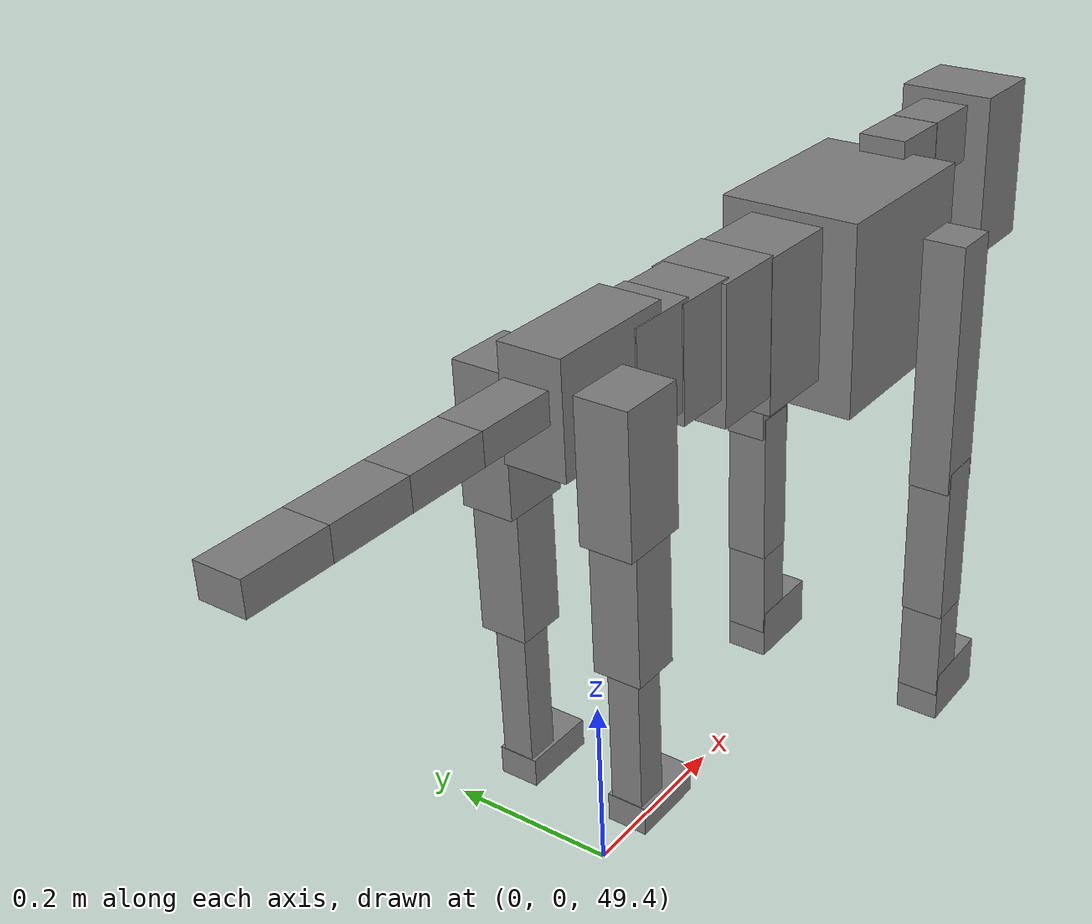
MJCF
<mujoco model="dog">

    <default>
        <joint armature="0.02" stiffness="1" damping="0.2" limited="true"/>
        <geom condim="3" friction="1 0.05 0.05" margin="0.01"/>
        <motor ctrllimited="true" ctrlrange="-1.0 1.0" forcelimited="true" gear="50"/>
    </default>

    <compiler inertiafromgeom="true" angle="radian"/>

    <option timestep="0.016" iterations="50" tolerance="1e-10" solver="Newton" jacobian="dense" cone="pyramidal"/>

    <size nconmax="20000" njmax="60000" nstack="5000000"/>
    <visual>
        <map force="0.1" zfar="30"/>
        <rgba haze="0.15 0.25 0.35 1"/>
        <quality shadowsize="2048"/>
        <global offwidth="800" offheight="800"/>
    </visual>

    <asset>
        <texture type="skybox" builtin="gradient" rgb1="0.3 0.5 0.7" rgb2="0 0 0" width="512" height="512"/>
        <texture name="texplane" type="2d" builtin="checker" rgb1=".2 .3 .4" rgb2=".1 0.15 0.2" width="512" height="512"
                 mark="cross" markrgb=".8 .8 .8"/>
        <texture name="texgeom" type="cube" builtin="flat" mark="cross" width="127" height="1278" rgb1="0.8 0.6 0.4"
                 rgb2="0.8 0.6 0.4" markrgb="1 1 1" random="0.01"/>

        <material name="matplane" reflectance="0.3" texture="texplane" texrepeat="1 1" texuniform="true"/>
        <material name="matgeom" texture="texgeom" texuniform="true" rgba="0.8 0.6 .4 1"/>
    </asset>

    <worldbody>
        <geom name="floor" pos="0 0 0" size="0 0 .25" type="plane" material="matplane" condim="3"/>

        <light directional="false" diffuse=".2 .2 .2" specular="0 0 0" pos="0 0 5" dir="0 0 -1" castshadow="false"/>
        <light mode="targetbodycom" target="torso" directional="false" diffuse=".8 .8 .8" specular="0.3 0.3 0.3"
               pos="0 0 4.0" dir="0 0 -1"/>

        <body name="root" pos="0 0 50">
            <freejoint name="root_1"/>
            <geom type="box" pos="0 0 -0.02" size="0.0774  0.0358  0.063" density="2030"/>

            <body name="spine1" pos="0.054 0 0">
                <joint name="spine1_y" axis="0 1 0" range="0 0.7" limited="true"/>
                <geom type="box" pos="0.02375 0 -0.03" size="0.04375  0.0375  0.05985" density="2030"/>

                <body name="spine2" pos="0.0612 0 0">
                    <joint name="spine2_y" axis="0 1 0" range="-0.15 0.15" limited="true"/>
                    <geom type="box" pos="0.03555  0  -0.04" size="0.04055  0.039  0.06615" density="2030"/>

                    <body name="spine3" pos="0.0730 0 0">
                        <joint name="spine3_y" axis="0 1 0" range="-0.15 0.15" limited="true"/>
                        <geom type="box" pos="0.03555  0  -0.057" size="0.04555  0.0445  0.081" density="2030"/>

                        <body name="spine4" pos="0.0780 0 0">
                            <joint name="spine4_y" axis="0 1 0" range="-0.15 0.15" limited="true"/>
                            <geom type="box" pos="0.05265  0  -0.07" size="0.05265  0.045  0.09135" density="2030"/>

                            <body name="torso" pos="0.1082 0 0">
                                <joint name="torso_y" axis="0 1 0" range="-0.15 0.15" limited="true"/>
                                <geom type="box" pos="0.11925  0  -0.085" size="0.11925  0.085  0.11745"
                                      density="2030"/>

                                <body name="neck1" pos="0.2160  0   0.0180">
                                    <joint name="neck1_y" axis="0 1 0" range="-1.2  -1" limited="true"/>
                                    <geom type="box" pos="0.0423  0  0" size="0.0423  0.03  0.036" density="2325"/>

                                    <body name="neck2" pos="0.0853  0  0">
                                        <joint name="neck2_y" axis="0 1 0" range="0.1  0" limited="true"/>
                                        <geom type="box" pos="0.0423  0  0" size="0.0423  0.03  0.036" density="2325"/>

                                        <body name="head" pos="0.0853  0  0">
                                            <joint name="head_y" axis="0 1 0" range="-0.3  -0.2" limited="true"/>
                                            <geom type="box" pos="0.0531  0  -0.055" size="0.0531  0.06  0.1044"
                                                  density="4030"/>

                                        </body>
                                    </body>
                                </body>

                                <body name="front_shoulder" pos="0.156  0   -0.0480">
                                    <joint name="front_shoulder_y" axis="0 1 0" range="-1 1.5" limited="true"/>
                                    <geom type="box" pos="0 0.13 -0.1330" size="0.0306  0.0262  0.1596" density="1158"/>
                                    <geom type="box" pos="0 -0.13 -0.1330" size="0.0306  0.0262  0.1596"
                                          density="1158"/>

                                    <body name="front_elbow" pos="0  0  -0.2660">
                                        <joint name="front_elbow_y" axis="0 1 0" range="-2 0" limited="true"/>
                                        <geom type="box" pos="0 0.13 -0.1033" size="0.0266  0.0272  0.1033"
                                              density="1081"/>
                                        <geom type="box" pos="0 -0.13 -0.1033" size="0.0266  0.0272  0.1033"
                                              density="1081"/>

                                        <body name="front_wrist" pos="0  0  -0.2067">
                                            <joint name="front_wrist_y" axis="0 1 0" range="-0.2 0" limited="true"/>
                                            <geom type="box" pos="0 0.13 -0.0532" size="0.0244  0.0271  0.0663"
                                                  density="1664"/>
                                            <geom type="box" pos="0 -0.13 -0.0532" size="0.0244  0.0271  0.0663"
                                                  density="1664"/>

                                            <body name="front_finger_end" pos="0  0  -0.1063">
                                                <joint name="front_finger_y" axis="0 1 0" range="-0.4 1"
                                                       limited="true"/>
                                                <geom type="box" pos="0.0278  0.13  -0.0179"
                                                      size="0.0509  0.0278  0.0329" density="1515"/>
                                                <geom type="box" pos="0.0278  -0.13  -0.0179"
                                                      size="0.0509  0.0278  0.0329" density="1515"/>

                                            </body>

                                        </body>
                                    </body>
                                </body>

                            </body>
                        </body>
                    </body>
                </body>
            </body>

            <body name="back_hip" pos="-0.03 0 -0.018">
                <joint name="back_hip_y" axis="0 1 0" range="-1.5 0.3" limited="true"/>
                <geom type="box" pos="0 0.07 -0.0555" size="0.0380  0.0298  0.0783" density="1154"/>
                <geom type="box" pos="0 -0.07 -0.0555" size="0.0380  0.0298  0.0783" density="1154"/>

                <body name="back_knee" pos="0  0  -0.1109">
                    <joint name="back_knee_y" axis="0 1 0" range="0 2.8" limited="true"/>
                    <geom type="box" pos="0 0.07 -0.0775" size="0.0277  0.0273  0.0931" density="1227"/>
                    <geom type="box" pos="0 -0.07 -0.0775" size="0.0277  0.0273  0.0931" density="1227"/>

                    <body name="back_ankle" pos="0  0  -0.1550">
                        <joint name="back_ankle_y" axis="0 1 0" range="-2.2 0" limited="true"/>
                        <geom type="box" pos="0 0.07 -0.0936" size="0.0182  0.0182  0.1049" density="1284"/>
                        <geom type="box" pos="0 -0.07 -0.0936" size="0.0182  0.0182  0.1049" density="1284"/>

                        <body name="back_toe_end" pos="0  0  -0.1873">
                            <joint name="back_toe_y" axis="0 1 0" range="-0.4 1" limited="true"/>
                            <geom type="box" pos="0.0226  0.07  -0.0012" size="0.0415  0.0226  0.0162" density="1515"/>
                            <geom type="box" pos="0.0226  -0.07  -0.0012" size="0.0415  0.0226  0.0162" density="1515"/>

                        </body>
                    </body>
                </body>
            </body>

            <body name="tail1" pos="-0.074 0 -0.006">
                <joint name="tail1_y" axis="0 1 0" range="-0.2 0.2" limited="true"/>
                <geom type="box" pos="-0.0536  0  0" size="0.045  0.025  0.0175" density="1587"/>

                <body name="tail2" pos="-0.09 0 0">
                    <joint name="tail2_y" axis="0 1 0" range="-0.2 0.2" limited="true"/>
                    <geom type="box" pos="-0.0536  0  0" size="0.045  0.025  0.0175" density="1587"/>

                    <body name="tail3" pos="-0.09 0 0">
                        <joint name="tail3_y" axis="0 1 0" range="-0.2 0.2" limited="true"/>
                        <geom type="box" pos="-0.0536  0  0" size="0.045  0.025  0.0175" density="1587"/>

                        <body name="tail4" pos="-0.09 0 0">
                            <joint name="tail4_y" axis="0 1 0" range="-0.2 0.2" limited="true"/>
                            <geom type="box" pos="-0.0536  0  0" size="0.045  0.025  0.0175" density="1587"/>

                        </body>
                    </body>
                </body>
            </body>
        </body>
    </worldbody>

    <actuator>
        <motor joint="spine1_y" forcerange="-150 150     "/>
        <motor joint="spine2_y" forcerange="-150 150     "/>
        <motor joint="spine3_y" forcerange="-150 150     "/>
        <motor joint="spine4_y" forcerange="-150 150     "/>
        <motor joint="torso_y" forcerange="-150 150     "/>
        <motor joint="neck1_y" forcerange="-100 100       "/>
        <motor joint="neck2_y" forcerange="-100 100       "/>
        <motor joint="head_y" forcerange="-150 150       "/>
        <motor joint="front_shoulder_y" forcerange="-143.61 130.93"/>
        <motor joint="front_elbow_y" forcerange="-136.21 161.80"/>
        <motor joint="front_wrist_y" forcerange="-70.05 146.78"/>
        <motor joint="front_finger_y" forcerange="-77.07 31.13"/>
        <motor joint="back_hip_y" forcerange="-298.52 298.53"/>
        <motor joint="back_knee_y" forcerange="-210.57 386.89"/>
        <motor joint="back_angle_y" forcerange="-99.78 91.71"/>
        <motor joint="back_toe_y" forcerange="-67.76 33.17"/>
        <motor joint="tail1_y" forcerange="-50 50     "/>
        <motor joint="tail2_y" forcerange="-50 50     "/>
        <motor joint="tail3_y" forcerange="-50 50     "/>
        <motor joint="tail4_y" forcerange="-50 50     "/>
    </actuator>
</mujoco>
